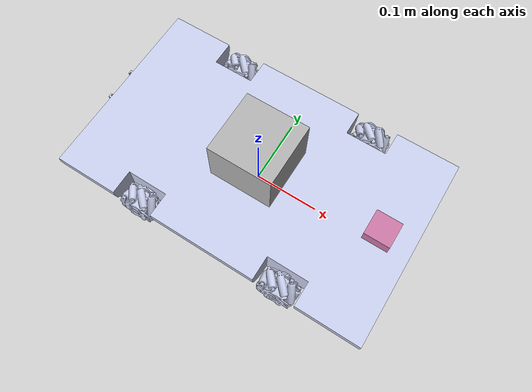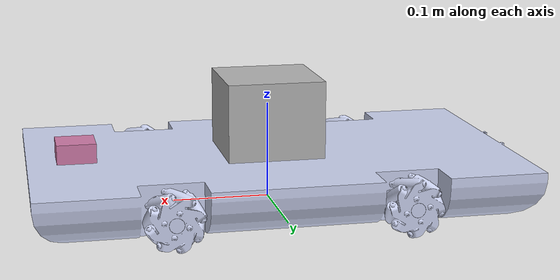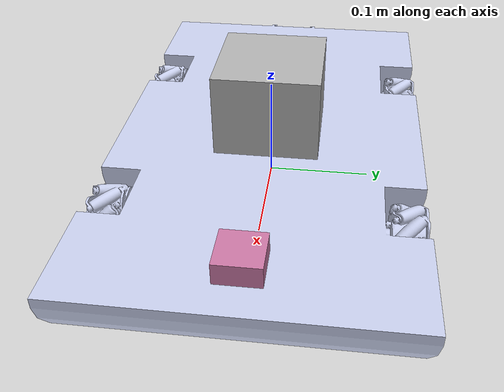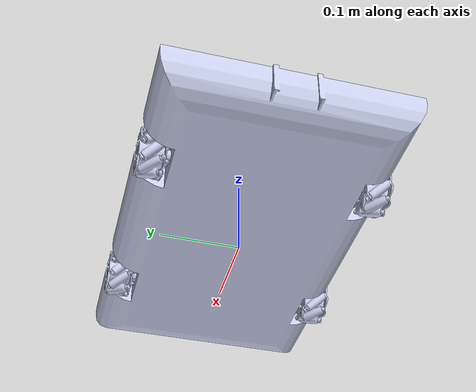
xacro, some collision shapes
<?xml version='1.0'?>

<robot name="mecanum_robot" xmlns:xacro="http://www.ros.org/wiki/xacro">

<xacro:include filename="$(find mecanum_robot)/urdf/mecanum_robot.gazebo" />

  <!-- Wheels -->
  <xacro:property name="r" value="0.03" /> <!-- wheel radius in m-->
  <xacro:property name="h" value="0.03" /> <!-- wheel length in m-->

<!-- .............Robot Footprint & Chassis (Link - Joint).......................................... -->

  <link name="robot_footprint"/>

  <link name="chassis">
    <inertial>
      <origin xyz="-8.294E-05 -7.7011E-11 -0.023972" rpy="0 0 0" />
      <mass value="6.5996" />
      <inertia ixx="0.043356" ixy="-1.6809E-08" ixz="-1.7057E-07" iyy="0.13461" iyz="3.8673E-11" izz="0.17533" />
    </inertial>
    <visual>
      <origin xyz="0 0 0" rpy="0 0 0" />
      <geometry>
        <mesh filename="package://mecanum_robot/meshes/chassis.STL" />
      </geometry>
      <material name="">
        <color rgba="0.79216 0.81961 0.93333 1" />
      </material>
    </visual>
    <collision>
      <origin xyz="0 0 0" rpy="0 0 0" />
      <geometry>
	      <mesh filename="package://mecanum_robot/meshes/chassis.STL" />
      </geometry>
    </collision>
  </link>

  <joint name="robot_footprint_joint" type="fixed">
    <origin xyz="0 0 0.05" rpy="0 0 0" />
    <parent link="robot_footprint"/>
    <child link="chassis" />
  </joint>

<!-- ................Rear Right Wheel (Link - Joint - Transmission)................................ -->

  <link name="rear_right_wheel">
    <inertial>
      <origin xyz="1.624E-12 -3.4926E-12 0.021031" rpy="0 0 0" />
      <mass value="0.049871" />
      <inertia ixx="5.3189E-06" ixy="1.2084E-15" ixz="-9.388E-17" iyy="5.3189E-06" iyz="1.994E-16" izz="6.4396E-06" />
    </inertial>
    <visual>
      <origin xyz="0 0 0" rpy="0 0 0" />
      <geometry>
        <mesh filename="package://mecanum_robot/meshes/rear_right_wheel.STL" />
      </geometry>
      <material name="">
        <color rgba="0.79216 0.81961 0.93333 1" />
      </material>
    </visual>
    <collision>
      <origin xyz="0 0 0" rpy="0 0 0" />
      <geometry>
        <cylinder length="${h}" radius="${r}" />
      </geometry>
    </collision>
  </link>

  <joint name="rear_right_wheel_joint" type="continuous">
    <origin xyz="0.1175 0.113 -0.03" rpy="1.5708 -0.55618 3.1416" />
    <parent link="chassis" />
    <child link="rear_right_wheel" />
    <axis xyz="0 0 1" />
    <limit lower="-3.14" upper="3.14" effort="200" velocity="5" />
  </joint>

  <transmission name="rear_right_wheel_joint_trans">
    <type>transmission_interface/SimpleTransmission</type>
    <joint name="rear_right_wheel_joint" >
      <hardwareInterface>hardware_interface/VelocityJointInterface</hardwareInterface>
    </joint>
    <actuator name="rear_right_wheel_joint_motor">
        <mechanicalReduction>1</mechanicalReduction>
    </actuator>
  </transmission>

<!-- ..................Rear Left Wheel (Link - Joint - Transmission)................................ -->

  <link name="rear_left_wheel">
    <inertial>
      <origin xyz="-6.2922E-13 3.7938E-12 0.021031" rpy="0 0 0" />
      <mass value="0.049871" />
      <inertia ixx="5.3189E-06" ixy="5.4099E-16" ixz="3.9906E-17" iyy="5.3189E-06" iyz="-2.1312E-16" izz="6.4396E-06" />
    </inertial>
    <visual>
      <origin xyz="0 0 0" rpy="0 0 0" />
      <geometry>
        <mesh filename="package://mecanum_robot/meshes/rear_left_wheel.STL" />
      </geometry>
      <material name="">
        <color rgba="0.79216 0.81961 0.93333 1" />
      </material>
    </visual>
    <collision>
      <origin xyz="0 0 0" rpy="0 0 0" />
      <geometry>
        <cylinder length="${h}" radius="${r}" />
      </geometry>
    </collision>
  </link>

  <joint name="rear_left_wheel_joint" type="continuous">
    <origin xyz="0.1175 -0.113 -0.03" rpy="-1.5708 -1.0094 3.1416" />
    <parent link="chassis" />
    <child link="rear_left_wheel" />
    <axis xyz="0 0 1" />
    <limit lower="-3.14" upper="3.14" effort="200" velocity="5" />
  </joint>

  <transmission name="rear_left_wheel_joint_trans">
    <type>transmission_interface/SimpleTransmission</type>
    <joint name="rear_left_wheel_joint" >
      <hardwareInterface>hardware_interface/VelocityJointInterface</hardwareInterface>
    </joint>
    <actuator name="rear_left_wheel_joint_motor">
        <mechanicalReduction>1</mechanicalReduction>
    </actuator>
  </transmission>

<!-- ....................Front Right Wheel (Link - Joint - Transmission)................................ -->

  <link name="front_right_wheel">
    <inertial>
      <origin xyz="-6.2939E-13 3.7953E-12 0.021031" rpy="0 0 0" />
      <mass value="0.049871" />
      <inertia ixx="5.3189E-06" ixy="5.4109E-16" ixz="3.6773E-17" iyy="5.3189E-06" iyz="-2.1556E-16" izz="6.4396E-06" />
    </inertial>
    <visual>
      <origin xyz="0 0 0" rpy="0 0 0" />
      <geometry>
        <mesh filename="package://mecanum_robot/meshes/front_right_wheel.STL" />
      </geometry>
      <material name="">
        <color rgba="0.79216 0.81961 0.93333 1" />
      </material>
    </visual>
    <collision>
      <origin xyz="0 0 0" rpy="0 0 0" />
      <geometry>
        <cylinder length="${h}" radius="${r}" />
      </geometry>
    </collision>
  </link>

  <joint name="front_right_wheel_joint" type="continuous">
    <origin xyz="-0.1175 0.113 -0.03" rpy="1.5708 0.55618 3.1416" />
    <parent link="chassis" />
    <child link="front_right_wheel" />
    <axis xyz="0 0 1" />
    <limit lower="-3.14" upper="3.14" effort="200" velocity="5" />
  </joint>

  <transmission name="front_right_wheel_joint_trans">
    <type>transmission_interface/SimpleTransmission</type>
    <joint name="front_right_wheel_joint" >
      <hardwareInterface>hardware_interface/VelocityJointInterface</hardwareInterface>
    </joint>
    <actuator name="front_right_wheel_joint_motor">
        <mechanicalReduction>1</mechanicalReduction>
    </actuator>
  </transmission>

<!-- ..................Front Left Wheel (Link - Joint - Transmission)................................ -->

  <link name="front_left_wheel">
    <inertial>
      <origin xyz="1.451E-12 -3.5752E-12 0.021031" rpy="0 0 0" />
      <mass value="0.049871" />
      <inertia ixx="5.3189E-06" ixy="1.1259E-15" ixz="-8.0856E-17" iyy="5.3189E-06" iyz="2.0104E-16" izz="6.4396E-06" />
    </inertial>
    <visual>
      <origin xyz="0 0 0" rpy="0 0 0" />
      <geometry>
        <mesh filename="package://mecanum_robot/meshes/front_left_wheel.STL" />
      </geometry>
      <material name="">
        <color rgba="0.79216 0.81961 0.93333 1" />
      </material>
    </visual>
    <collision>
      <origin xyz="0 0 0" rpy="0 0 0" />
      <geometry>
        <cylinder length="${h}" radius="${r}" />
      </geometry>
    </collision>
  </link>

  <joint name="front_left_wheel_joint" type="continuous">
    <origin xyz="-0.1175 -0.113 -0.03" rpy="-1.5708 1.3416 3.1416" />
    <parent link="chassis" />
    <child link="front_left_wheel" />
    <axis xyz="0 0 1" />
    <limit lower="-3.14" upper="3.14" effort="200" velocity="5" />
  </joint>

  <transmission name="front_left_wheel_joint_trans">
    <type>transmission_interface/SimpleTransmission</type>
    <joint name="front_left_wheel_joint" >
      <hardwareInterface>hardware_interface/VelocityJointInterface</hardwareInterface>
    </joint>
    <actuator name="front_left_wheel_joint_motor">
        <mechanicalReduction>1</mechanicalReduction>
    </actuator>
  </transmission>

<!-- ............................Camera (Link - Joint)..................................... -->

  <link name="camera">
    <inertial>
      <origin xyz="0 0 0" rpy="0 0 0"/>
      <mass value="0.1"/>
      <inertia ixx="1e-6" ixy="0" ixz="0.0" iyy="1e-6" iyz="0" izz="1e-6"/>
    </inertial>
    <collision>
      <origin xyz="0 0 0" rpy="0 0 0"/>
      <geometry>
        <box size="0.04 0.04 0.04"/>
      </geometry>
    </collision>
    <visual>
      <origin xyz="0 0 0" rpy="0 0 0"/>
      <geometry>
        <box size="0.04 0.04 0.04"/>
      </geometry>
    </visual>
  </link>

  <joint name="camera_joint" type="fixed">
    <origin xyz="0.2 0.0 0.0" rpy="0.0 0.0 0.0"/>
    <parent link="chassis"/>
    <child link="camera"/>
    <axis xyz="0.0 1.0 0.0"/>
  </joint>

<!-- .........................Lidar (Link - Joint)................................... -->

  <link name="hokuyo">
    <inertial>
      <origin xyz="0 0 0" rpy="0 0 0"/>
      <mass value="1e-5"/>
      <inertia ixx="1e-6" ixy="0" ixz="0" iyy="1e-6" iyz="0" izz="1e-6"/>
    </inertial>
    <collision>
      <origin xyz="0 0 0" rpy="0 0 0"/>
      <geometry>
        <box size="0.1 0.1 0.1"/>
      </geometry>
    </collision>
    <visual>
      <origin xyz="0 0 0" rpy="0 0 0"/>
      <geometry>
        <mesh filename="package://mecanum_robot/meshes/hokuyo.dae"/>
      </geometry>
    </visual>
  </link>

  <joint name="hokuyo_joint" type="fixed">
    <origin xyz="0.0 0.0 0.03" rpy="0.0 0.0 0.0"/>
    <parent link="chassis"/>
    <child link="hokuyo"/>
    <axis xyz="0.0 1.0 0.2"/>
  </joint>

</robot>
